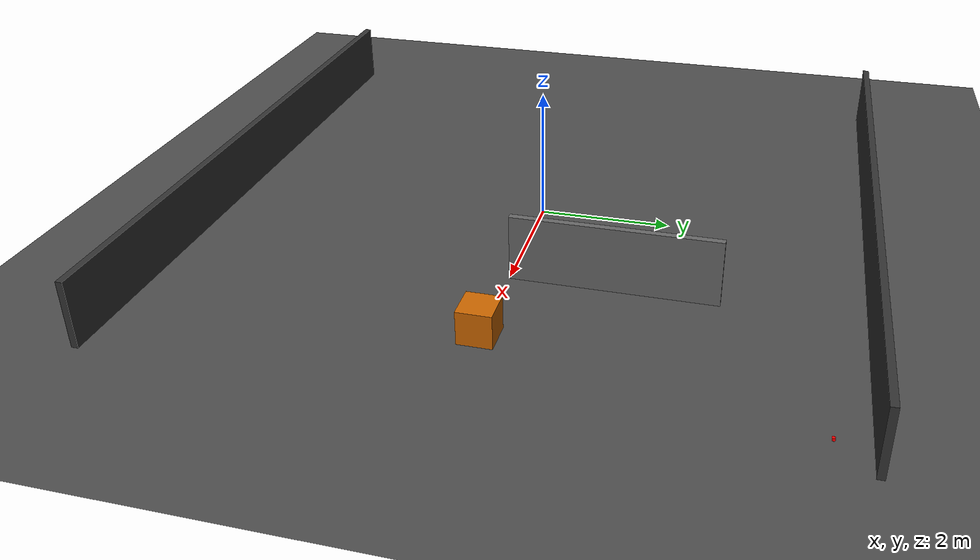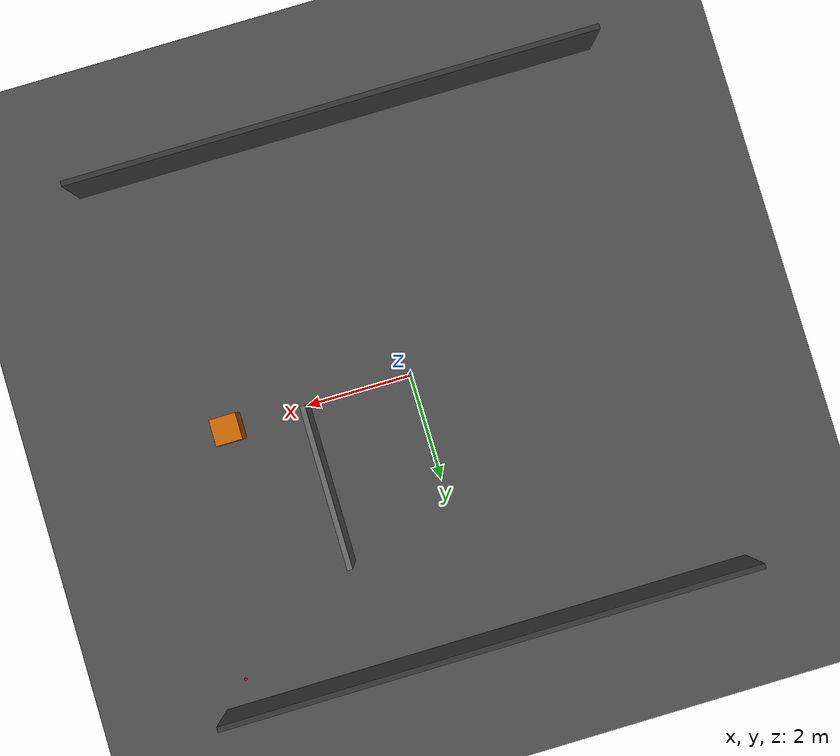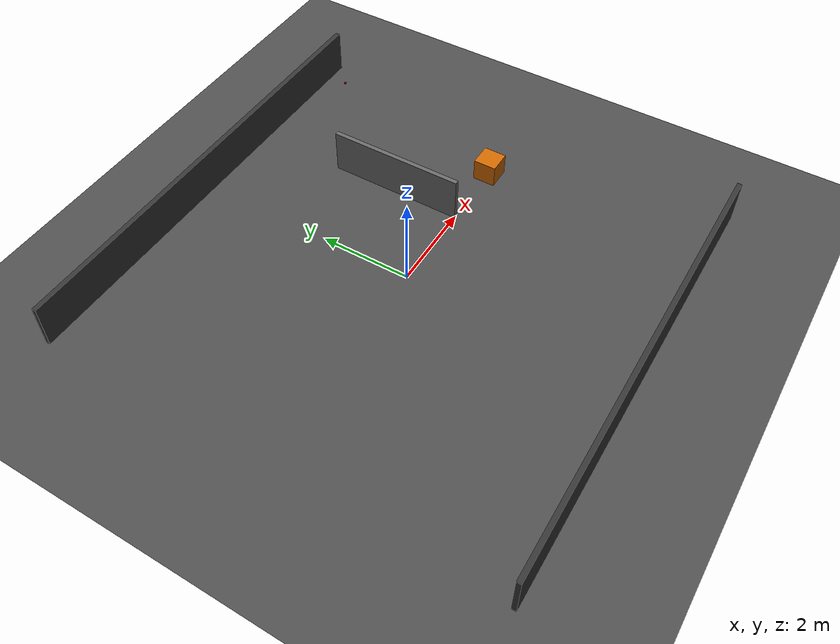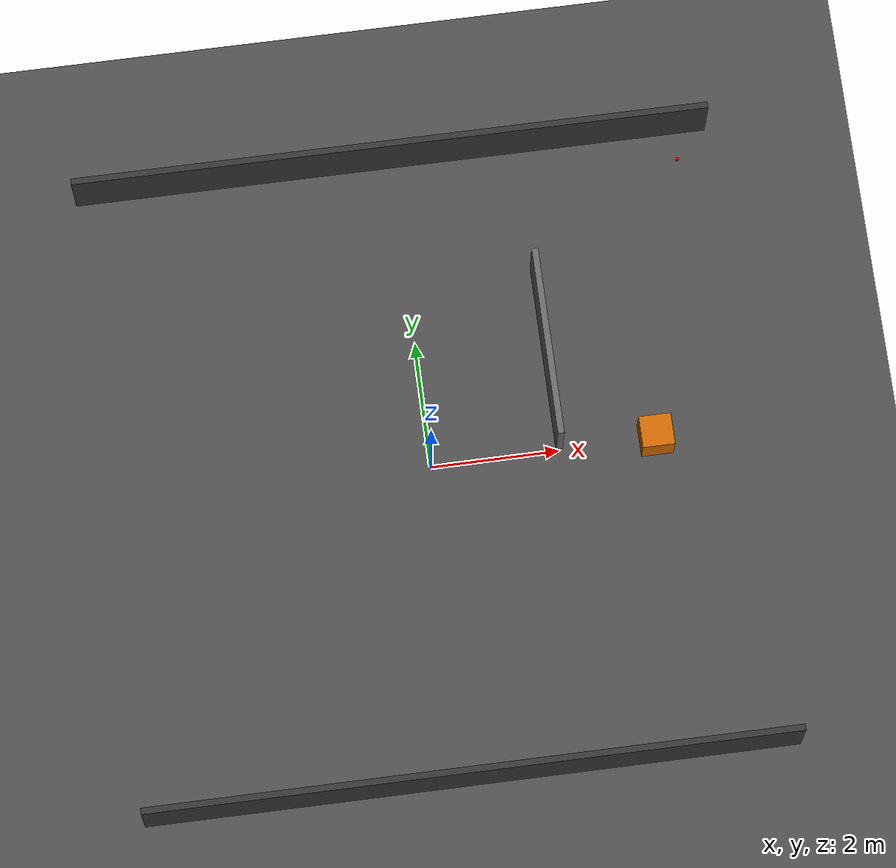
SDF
<?xml version="1.0" ?>
<sdf version="1.8">
    <world name="operation_sentinel">
        <physics name="1ms" type="ignored">
            <max_step_size>0.001</max_step_size>
            <real_time_factor>1.0</real_time_factor>
        </physics>
        <plugin filename="gz-sim-physics-system" name="gz::sim::systems::Physics"/>
        <plugin filename="gz-sim-user-commands-system" name="gz::sim::systems::UserCommands"/>
        <plugin filename="gz-sim-scene-broadcaster-system" name="gz::sim::systems::SceneBroadcaster"/>
        <plugin filename="gz-sim-contact-system" name="gz::sim::systems::Contact"/>

        <light type="directional" name="sun">
            <cast_shadows>true</cast_shadows>
            <pose>0 0 10 0 0 0</pose>
            <diffuse>0.8 0.8 0.8 1</diffuse>
            <specular>0.2 0.2 0.2 1</specular>
            <direction>-0.5 0.1 -0.9</direction>
        </light>

        <!-- STATIC LEVEL 1: OUTER MAZE -->
        <model name="outer_walls">
            <static>true</static>
            <link name="border">
                <collision name="c1"><pose>0 5 0.5 0 0 0</pose><geometry><box><size>10 0.1 1.0</size></box></geometry></collision>
                <visual name="v1"><pose>0 5 0.5 0 0 0</pose><geometry><box><size>10 0.1 1.0</size></box></geometry><material><ambient>0.2 0.2 0.2 1</ambient><diffuse>0.2 0.2 0.2 1</diffuse></material></visual>

                <collision name="c2"><pose>0 -5 0.5 0 0 0</pose><geometry><box><size>10 0.1 1.0</size></box></geometry></collision>
                <visual name="v2"><pose>0 -5 0.5 0 0 0</pose><geometry><box><size>10 0.1 1.0</size></box></geometry><material><ambient>0.2 0.2 0.2 1</ambient><diffuse>0.2 0.2 0.2 1</diffuse></material></visual>

                <collision name="c3"><pose>2 1.5 0.5 0 0 0</pose><geometry><box><size>0.1 3 1.0</size></box></geometry></collision>
                <visual name="v3"><pose>2 1.5 0.5 0 0 0</pose><geometry><box><size>0.1 3 1.0</size></box></geometry><material><ambient>0.4 0.4 0.4 1</ambient><diffuse>0.4 0.4 0.4 1</diffuse></material></visual>
            </link>
        </model>

        <!-- DYNAMIC LEVEL 2: THE KINETIC BLOCK -->
        <model name="dynamic_obstacle">
            <pose>3.5 0 0.25 0 0 0</pose>
            <link name="box">
                <inertial><mass>10.0</mass><inertia><ixx>0.4</ixx><iyy>0.4</iyy><izz>0.4</izz></inertia></inertial>
                <collision name="collision"><geometry><box><size>0.5 0.5 0.5</size></box></geometry></collision>
                <visual name="visual"><geometry><box><size>0.5 0.5 0.5</size></box></geometry><material><ambient>0.8 0.4 0 1</ambient><diffuse>0.8 0.4 0 1</diffuse></material></visual>
            </link>
            <plugin filename="gz-sim-trajectory-follower-system" name="gz::sim::systems::TrajectoryFollower">
                <link_name>box</link_name>
                <waypoint><time>0.0</time><pose>3.5 0 0.25 0 0 0</pose></waypoint>
                <waypoint><time>4.0</time><pose>3.5 1.5 0.25 0 0 0</pose></waypoint>
                <waypoint><time>8.0</time><pose>3.5 -1.5 0.25 0 0 0</pose></waypoint>
                <waypoint><time>12.0</time><pose>3.5 0 0.25 0 0 0</pose></waypoint>
                <loop>true</loop>
            </plugin>
        </model>

        <!-- HIGH-VALUE TARGETS -->
        <model name="target_1"><pose>4.5 4.5 0.05 0 0 0</pose><link name="l"><collision name="c"><geometry><box><size>0.04 0.04 0.04</size></box></geometry></collision><visual name="v"><geometry><box><size>0.04 0.04 0.04</size></box></geometry><material><ambient>1 0 0 1</ambient><diffuse>1 0 0 1</diffuse></material></visual></link></model>

        <model name="ground_plane">
            <static>true</static>
            <link name="link">
                <collision name="collision"><geometry><plane><normal>0 0 1</normal><size>20 20</size></plane></geometry></collision>
                <visual name="visual"><geometry><plane><normal>0 0 1</normal><size>20 20</size></plane></geometry><material><ambient>0.3 0.3 0.3 1</ambient><diffuse>0.3 0.3 0.3 1</diffuse></material></visual>
            </link>
        </model>
    </world>
</sdf>
